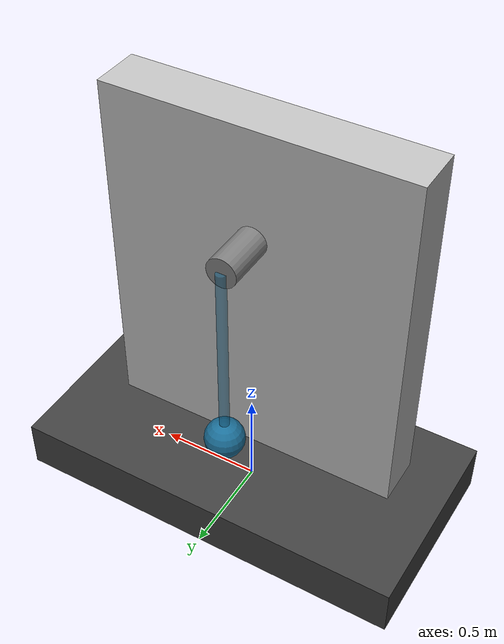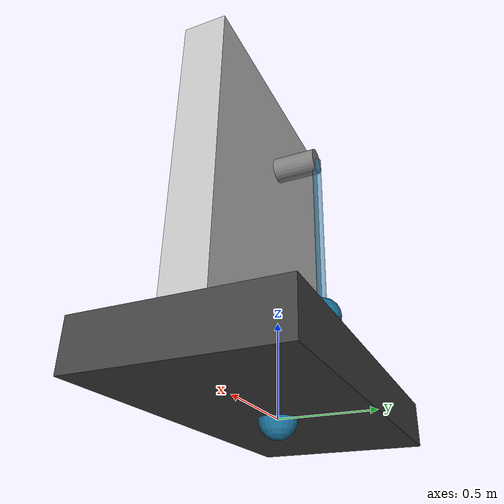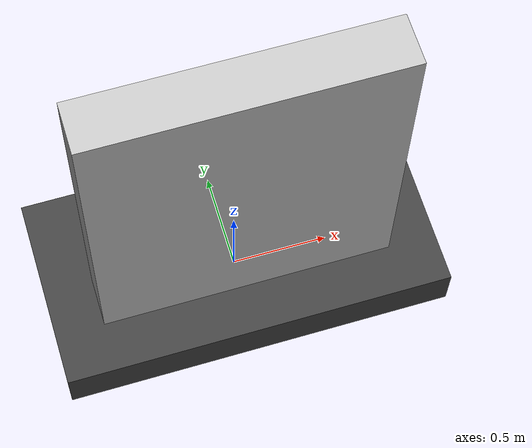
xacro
<?xml version="1.0"?>

<robot name="pendulum" xmlns:xacro="http://www.ros.org/wiki/xacro">

    <xacro:property name="pendulum_mass" value="1.0"/>
    <xacro:property name="pendulum_length" value="1.0"/>

    <material name="OA">
        <color rgba="0.101960784 0.42745098 0.588235294 1.0"/>
    </material>
    <material name="OATransparent">
        <color rgba="0.101960784 0.42745098 0.588235294 0.5"/>
    </material>
    <material name="Gray">
        <color rgba="0.5 0.5 0.5 1.0"/>
    </material>
    <material name="Darkgray">
        <color rgba="0.25 0.25 0.25 1.0"/>
    </material>
    <material name="Lightgray">
        <color rgba="0.75 0.75 0.75 1.0"/>
    </material>

    <gazebo reference="link_base">
        <turnGravityOff>false</turnGravityOff>
    </gazebo>
    <gazebo>
        <plugin name="gazebo_ros_template" filename="libgazebo_ros_template.so"/>
        <plugin name="gazebo_ros_control" filename="libgazebo_ros_control.so">
        </plugin>
        <plugin name="gazebo_ros_state" filename="libgazebo_ros_state.so">
            <linkName>link_pendulum</linkName>
            <pubInterval>0.05</pubInterval>
            <pubContinously>true</pubContinously>
        </plugin>
    </gazebo>

    <link name="link_base">
        <inertial>
            <origin xyz="0.0 0.0 0.0" rpy="0.0 0.0 0.0"/>
            <mass value="10000.0"/>
            <inertia  ixx="1000.0" ixy="0.0"  ixz="0.0"  iyy="100.0"  iyz="0.0"  izz="100.0"/>
        </inertial>
        <collision>
            <origin xyz="0.0 0.0 0.125"/>
            <geometry>
                <box size="2.0 1.0 0.25"/>
            </geometry>
        </collision>
        <visual>
            <origin xyz="0.0 0.0 0.0"/>
            <geometry>
                <sphere radius="0.1"/>
            </geometry>
            <material name="OA"/>
        </visual>
    </link>
    <link name="link_pendulum_body"> <!-- if links in between do not have physical properties JSP does not publish properly! -->
        <visual>
            <origin xyz="0.0 0.0 0.125"/>
            <geometry>
                <box size="2.0 1.0 0.25"/>
            </geometry>
            <material name="Darkgray"/>
        </visual>
        <visual>
            <origin xyz="0.0 -0.125 1.15"/>
            <geometry>
                <box size="1.5 0.25 1.8"/>
            </geometry>
            <material name="Lightgray"/>
        </visual>
    </link>
    <link name="link_pendulum">
        <inertial>
            <origin xyz="0.0 0.0 ${-1.0*pendulum_length}" rpy="0.0 0.0 0.0"/>
            <mass value="${pendulum_mass}"/>
            <inertia  ixx="${0.004*pendulum_mass}" ixy="0.0"  ixz="0.0"  iyy="${0.004*pendulum_mass}"  iyz="0.0"  izz="${0.004*pendulum_mass}"/>
        </inertial>
        <collision>
            <origin xyz="0.0 0.0 ${-1.0*pendulum_length}"/>
            <geometry>
                <sphere radius="0.1"/>
            </geometry>
        </collision>
        <visual>
            <origin xyz="0.0 -0.2 0.0" rpy="-1.570796327 0.0 0.0"/>
            <geometry>
                <cylinder length="0.4" radius="0.075"/>
            </geometry>
            <material name="Gray"/>
        </visual>
        <visual>
            <origin xyz="0.0 0.0 ${-1.0*pendulum_length/2.0}"/>
            <geometry>
                <cylinder length="${pendulum_length}" radius="0.025"/>
            </geometry>
            <material name="OATransparent"/>
        </visual>
        <visual>
            <origin xyz="0.0 0.0 ${-1.0*pendulum_length}"/>
            <geometry>
                <sphere radius="0.1"/>
            </geometry>
            <material name="OA"/>
        </visual>
    </link>

    <joint name="joint_pendulum_body" type="fixed">
        <origin xyz="0.0 0.0 0.0" rpy="0.0 0.0 0.0"/>
        <parent link="link_base"/>
        <child link="link_pendulum_body"/>
    </joint>
    <joint name="joint_pendulum" type="revolute">
        <axis xyz="0 1 0" />
        <origin xyz="0.0 0.25 1.5" rpy="0.0 0.0 0.0"/>
        <parent link="link_base"/>
        <child link="link_pendulum"/>
        <limit lower="-2.0" upper="2.0" effort="100000.0" velocity="100000.0"/>
        <dynamics damping="0.0" friction="0.0"/>
    </joint>

    <transmission name="transmission_pendulum_suspension">
        <type>transmission_interface/SimpleTransmission</type>
        <joint name="joint_pendulum">
          <hardwareInterface>hardware_interface/EffortJointInterface</hardwareInterface>
        </joint>
        <actuator name="actuator_pendulum">
          <hardwareInterface>hardware_interface/EffortJointInterface</hardwareInterface>
          <mechanicalReduction>1</mechanicalReduction>
        </actuator>
    </transmission>

</robot>
